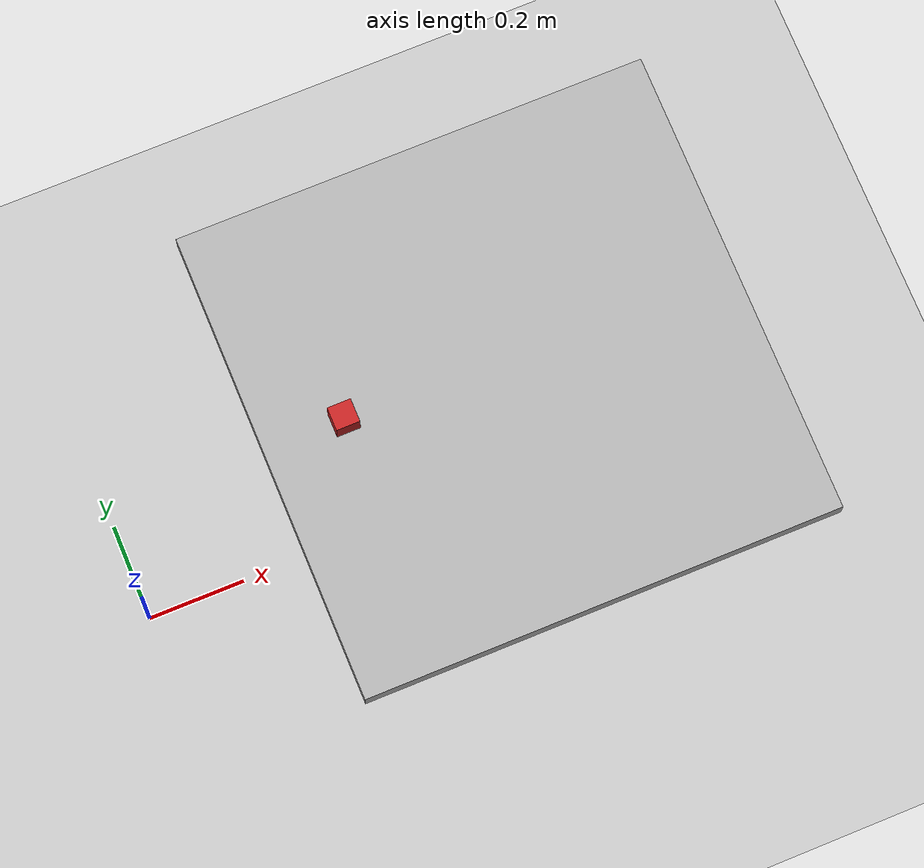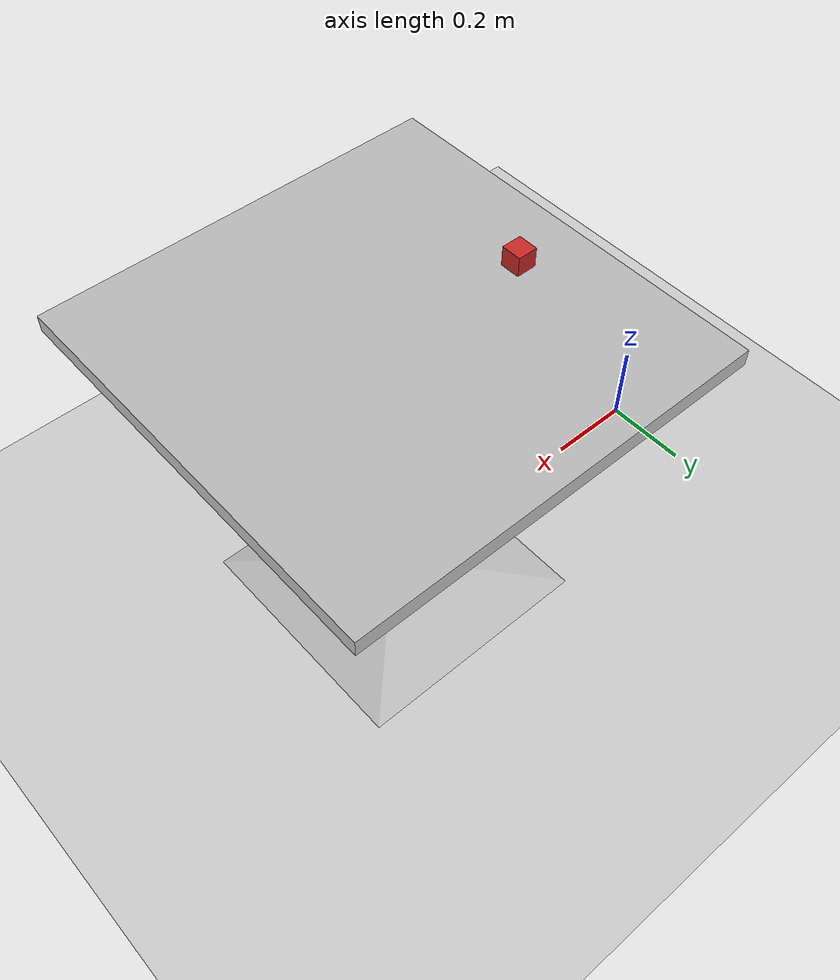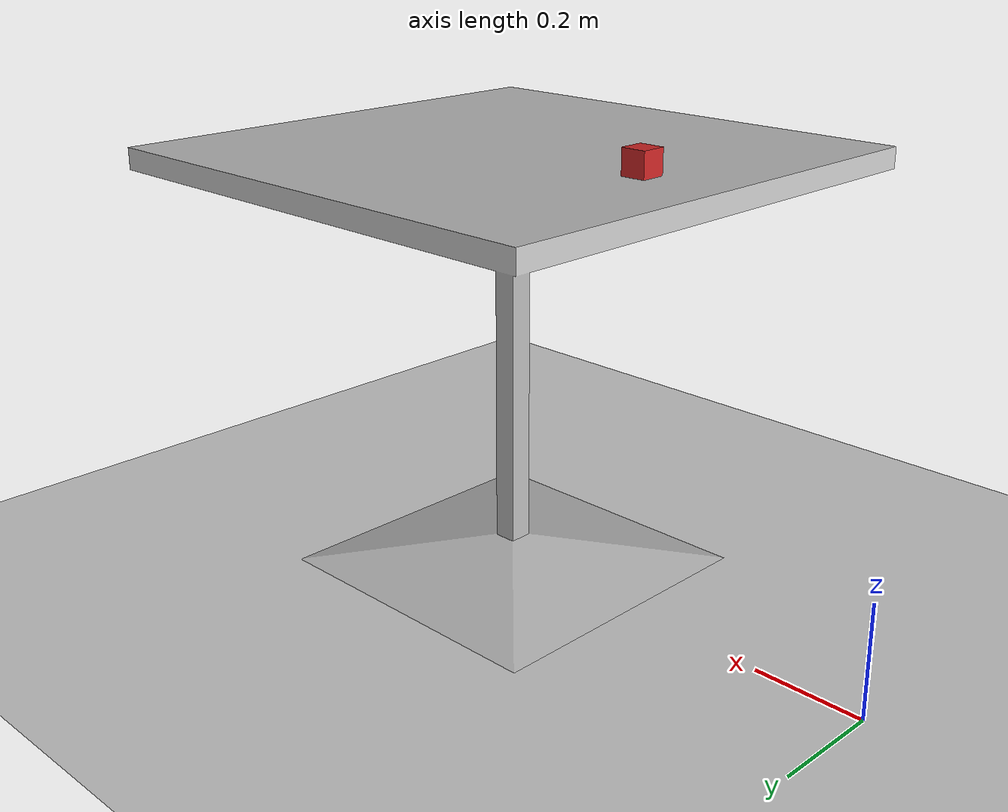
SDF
<sdf version="1.7">
 <world name="default">
  <light name="sun" type="directional">
   <pose>0 0 10 0 -0 0</pose>
   <diffuse>0.8 0.8 0.8 1</diffuse>
   <specular>0.2 0.2 0.2 1</specular>
   <attenuation>
    <range>1000</range>
    <constant>0.9</constant>
    <linear>0.01</linear>
    <quadratic>0.001</quadratic>
   </attenuation>
   <direction>-0.5 0.1 -0.9</direction>
   <spot><inner_angle>0</inner_angle><outer_angle>0</outer_angle><falloff>0</falloff></spot>
  </light>
  <model name="ground_plane">
   <static>1</static>
   <link name="link">
    <collision name="collision">
     <geometry><plane><normal>0 0 1</normal><size>100 100</size></plane></geometry>
     <surface>
      <contact><collide_bitmask>65535</collide_bitmask></contact>
      <friction><ode><mu>100</mu><mu2>50</mu2></ode></friction>
     </surface>
    </collision>
    <visual name="visual">
     <cast_shadows>0</cast_shadows>
     <geometry><plane><normal>0 0 1</normal><size>100 100</size></plane></geometry>
     <material>
      <script><uri>file://media/materials/scripts/gazebo.material</uri><name>Gazebo/Grey</name></script>
     </material>
    </visual>
   </link>
  </model>
  <gravity>0 0 -9.8</gravity>
  <magnetic_field>6e-06 2.3e-05 -4.2e-05</magnetic_field>
  <atmosphere type="adiabatic"/>
  <physics type="ode">
   <max_step_size>0.001</max_step_size>
   <real_time_factor>1</real_time_factor>
   <real_time_update_rate>1000</real_time_update_rate>
  </physics>
  <scene><ambient>0.4 0.4 0.4 1</ambient><background>0.7 0.7 0.7 1</background><shadows>1</shadows></scene>
  <spherical_coordinates>
   <surface_model>EARTH_WGS84</surface_model>
   <latitude_deg>0</latitude_deg>
   <longitude_deg>0</longitude_deg>
   <elevation>0</elevation>
   <heading_deg>0</heading_deg>
  </spherical_coordinates>
  <model name="cafe_table">
   <static>1</static>
   <link name="link">
    <collision name="surface">
     <pose>0 0 0.755 0 -0 0</pose>
     <geometry><box><size>0.913 0.913 0.04</size></box></geometry>
    </collision>
    <collision name="column">
     <pose>0 0 0.37 0 -0 0</pose>
     <geometry><box><size>0.042 0.042 0.74</size></box></geometry>
    </collision>
    <collision name="base">
     <pose>0 0 0.02 0 -0 0</pose>
     <geometry><box><size>0.56 0.56 0.04</size></box></geometry>
    </collision>
    <visual name="visual">
     <geometry><mesh><uri>model://cafe_table/meshes/cafe_table.dae</uri></mesh></geometry>
    </visual>
   </link>
   <pose>0.75 0 0 0 -0 0</pose>
  </model>
  <model name="block">
   <link name="block">
    <inertial>
     <pose>0.025 0.025 0.025 0 -0 0</pose>
     <mass>0.5</mass>
     <inertia>
      <ixx>0.00016875</ixx>
      <ixy>0</ixy>
      <ixz>0</ixz>
      <iyy>0.00016875</iyy>
      <iyz>0</iyz>
      <izz>0.00016875</izz>
     </inertia>
    </inertial>
    <collision name="block_collision">
     <pose>0.025 0.025 0.025 0 -0 0</pose>
     <geometry><box><size>0.045 0.045 0.045</size></box></geometry>
     <surface><friction><ode><mu>1000</mu><mu2>1000</mu2></ode></friction></surface>
    </collision>
    <visual name="block_visual">
     <pose>0.025 0.025 0.025 0 -0 0</pose>
     <geometry><box><size>0.045 0.045 0.045</size></box></geometry>
     <material>
      <script><name>Gazebo/Red</name><uri>file://media/materials/scripts/gazebo.material</uri></script>
     </material>
    </visual>
   </link>
   <pose>0.4225 0 0.7725 -0 -0 -0</pose>
  </model>
 </world>
</sdf>
